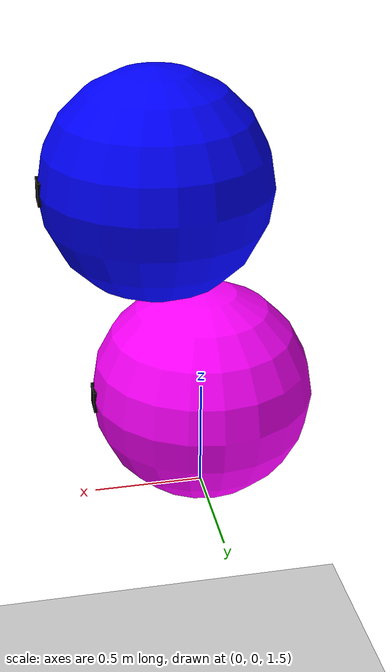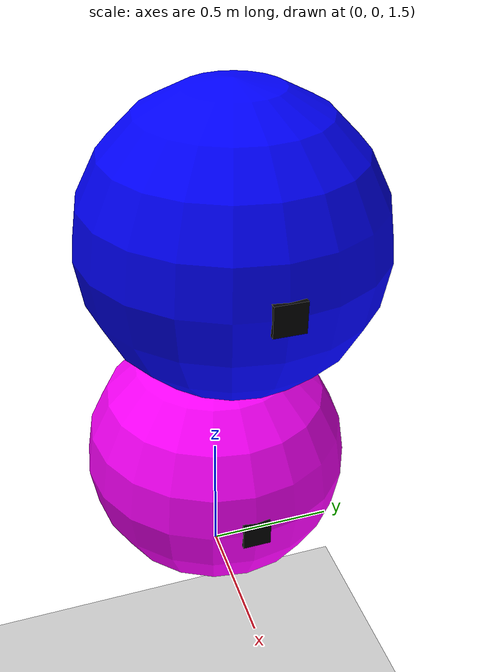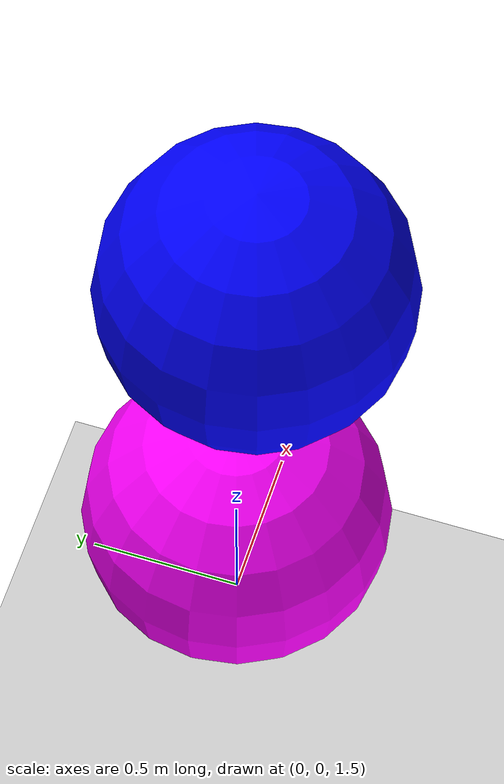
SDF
<?xml version="1.0" ?>
<sdf version="1.11">
  <world name="python_physics">

    <physics name="1ms" type="ignored">
        <max_step_size>0.010</max_step_size>
        <real_time_factor>1.0</real_time_factor>
    </physics>
    <gz:policies>
      <include_server_config_plugins>false</include_server_config_plugins>
    </gz:policies>

    <plugin filename="gz-sim-python-system-loader-system" name="gz::sim::systems::PythonSystemLoader">
      <module_name>newton_physics</module_name>
      <ecm_update_rate>60</ecm_update_rate>
      <show_viewer>false</show_viewer>
      <substeps>10</substeps>
    </plugin>

    <plugin
      filename="gz-sim-user-commands-system"
      name="gz::sim::systems::UserCommands">
    </plugin>
    <plugin
      filename="gz-sim-scene-broadcaster-system"
      name="gz::sim::systems::SceneBroadcaster">
    </plugin>

    <scene>
      <ambient>1.0 1.0 1.0</ambient>
      <background>0.8 0.8 0.8</background>
    </scene>

    <light type="directional" name="sun">
      <cast_shadows>true</cast_shadows>
      <pose>0 0 10 0 0 0</pose>
      <diffuse>0.8 0.8 0.8 1</diffuse>
      <specular>0.2 0.2 0.2 1</specular>
      <attenuation>
        <range>1000</range>
        <constant>0.9</constant>
        <linear>0.01</linear>
        <quadratic>0.001</quadratic>
      </attenuation>
      <direction>-0.5 0.1 -0.9</direction>
    </light>

    <model name="ground_plane">
      <static>true</static>
      <link name="link">
        <collision name="collision">
          <geometry>
            <plane>
              <normal>0 0 1</normal>
              <size>100 100</size>
            </plane>
          </geometry>
        </collision>
        <visual name="visual">
          <geometry>
            <plane>
              <normal>0 0 1</normal>
              <size>100 100</size>
            </plane>
          </geometry>
          <material>
            <ambient>0.8 0.8 0.8 1</ambient>
            <diffuse>0.8 0.8 0.8 1</diffuse>
            <specular>0.8 0.8 0.8 1</specular>
          </material>
        </visual>
      </link>
    </model>

    <!-- Colliding Spheres -->
    <model name="sphere1">
      <pose>0 0 2 0 0 0</pose>
      <link name="sphere1_link">
        <collision name="sphere1_collision">
          <geometry>
            <sphere>
              <radius>0.5</radius>
            </sphere>
          </geometry>
        </collision>
        <visual name="sphere1_visual">
          <geometry>
            <sphere>
              <radius>0.5</radius>
            </sphere>
          </geometry>
          <material>
            <ambient>1 0 1 1</ambient>
            <diffuse>1 0 1 1</diffuse>
            <specular>1 0 1 1</specular>
          </material>
        </visual>
        <visual name="sphere1_feature">
          <pose>0.45 0 0 0 0 0</pose>
          <geometry>
            <box>
              <size>0.1 0.1 0.1</size>
            </box>
          </geometry>
          <material>
            <ambient>0 0 0 1</ambient>
            <diffuse>0 0 0 1</diffuse>
            <specular>0 0 0 1</specular>
          </material>
        </visual>
      </link>
    </model>

    <model name="sphere2">
      <pose>0.2 0 3 0 0 0</pose>
      <link name="sphere2_link">
        <collision name="sphere2_collision">
          <geometry>
            <sphere>
              <radius>0.5</radius>
            </sphere>
          </geometry>
        </collision>
        <visual name="sphere2_visual">
          <geometry>
            <sphere>
              <radius>0.5</radius>
            </sphere>
          </geometry>
          <material>
            <ambient>0 0 1 1</ambient>
            <diffuse>0 0 1 1</diffuse>
            <specular>0 0 1 1</specular>
          </material>
        </visual>
        <visual name="sphere2_feature">
          <pose>0.45 0 0 0 0 0</pose>
          <geometry>
            <box>
              <size>0.1 0.1 0.1</size>
            </box>
          </geometry>
          <material>
            <ambient>0 0 0 1</ambient>
            <diffuse>0 0 0 1</diffuse>
            <specular>0 0 0 1</specular>
          </material>
        </visual>
      </link>
    </model>

  </world>
</sdf>
